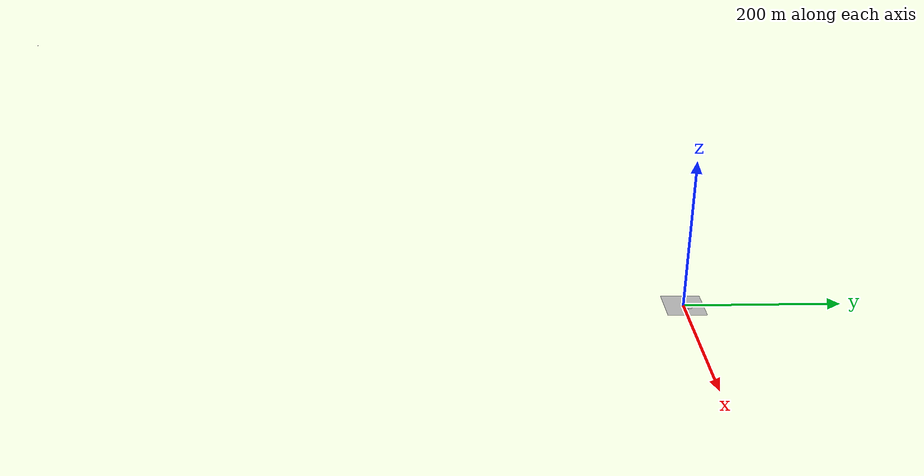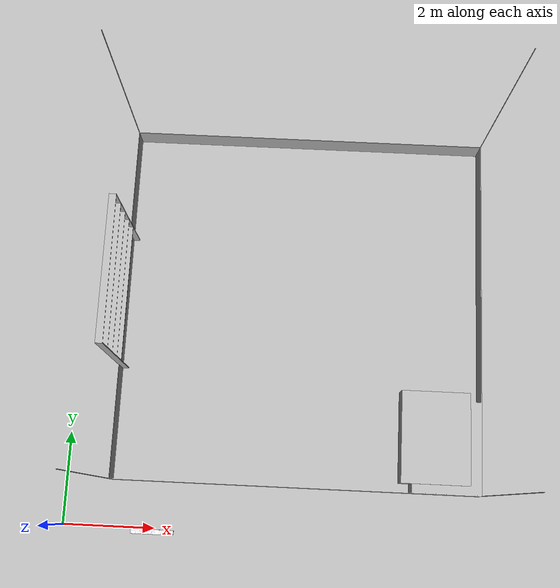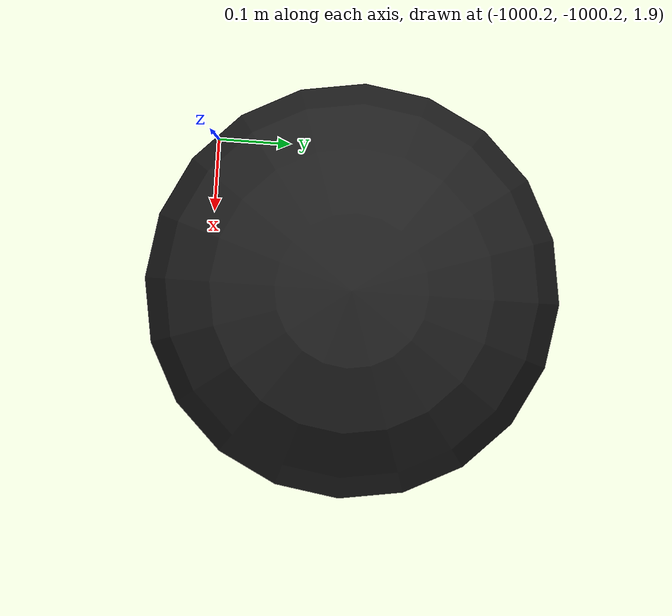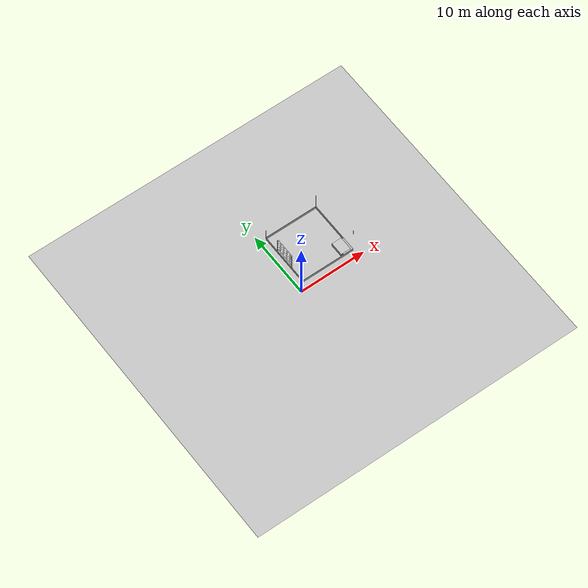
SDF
<?xml version="1.0" ?>
<sdf version="1.10">
  <world name="fase3">
    <plugin
      filename="gz-sim-physics-system"
      name="gz::sim::systems::Physics">
    </plugin>
    <plugin
      filename="gz-sim-user-commands-system"
      name="gz::sim::systems::UserCommands">
    </plugin>
    <plugin
      filename="gz-sim-scene-broadcaster-system"
      name="gz::sim::systems::SceneBroadcaster">
    </plugin>
    <plugin
      filename="gz-sim-sensors-system"
      name="gz::sim::systems::Sensors">
      <render_engine>ogre2</render_engine>
    </plugin>
    <plugin
      filename="gz-sim-imu-system"
      name="gz::sim::systems::Imu">
    </plugin>
    <plugin
      filename="gz-sim-air-speed-system"
      name="gz::sim::systems::AirSpeed">
    </plugin>
    <plugin
      name='gz::sim::systems::AirPressure'
      filename='gz-sim-air-pressure-system'>
    </plugin>

    <light type="directional" name="sun">
      <cast_shadows>true</cast_shadows>
      <pose>0 0 20 0 0 0</pose>
      <ambient>0.8 0.8 0.8 1</ambient>
      <diffuse>1.0 1.0 1.0 1</diffuse>
      <specular>0.2 0.2 0.2 1</specular>
      <attenuation>
        <range>1000</range>
        <constant>0.9</constant>
        <linear>0.01</linear>
        <quadratic>0.001</quadratic>
      </attenuation>
      <direction>-0.5 0.1 -0.9</direction>
    </light>

    <!-- setup shadows {-->
    <scene>
      <shadows>false</shadows>
      <sky>
        <clouds />
      </sky>
    </scene>

    <!-- ground plane {-->
    <model name="ground_plane">
      <static>true</static>
      <link name="link">
        <collision name="collision">
          <pose>0 0 0 0 0 0</pose>
          <geometry>
            <plane>
              <normal>0 0 1</normal>
              <size>250 250</size>
            </plane>
          </geometry>
          <surface>
            <friction>
              <ode>
                <mu>1</mu>
                <mu2>1</mu2>
              </ode>
            </friction>
          </surface>
        </collision>
        <visual name="grass">
          <pose>0 0 0 0 0 0</pose>
          <cast_shadows>false</cast_shadows>
          <geometry>
            <mesh>
              <uri>file://grass_plane/meshes/grass_plane.dae</uri>
            </mesh>
          </geometry>
        </visual>
      </link>
    </model>

    <!-- THE VOID (for spawning objects out of camera view) {-->
    <model name='the_void'>
      <static>1</static>
      <link name='link'>
        <pose frame=''>0 0 0.1 0 -0 0</pose>
        <visual name='the_void'>
          <pose frame=''>0 0 2 0 -0 0</pose>
          <geometry>
            <sphere>
              <radius>0.25</radius>
            </sphere>
          </geometry>
          <material>
            <script>
              <uri>file://media/materials/scripts/Gazebo.material</uri>
              <name>Gazebo/Black</name>
            </script>
          </material>
        </visual>
        <self_collide>0</self_collide>
        <enable_wind>0</enable_wind>
        <kinematic>0</kinematic>
      </link>
      <pose frame=''>-1000 -1000 0 0 0 0</pose>
    </model>

    <!-- user camera {-->
    <gui>
      <camera name="camera">
        <pose>-4 -4 7 0 0.4 0.89</pose>
      </camera>
    </gui>

    <!-- Models Worlds -->

    <!-- THE ARENA MODEL -->
    <model name="arena">
      <include>
        <uri>model://arena_spawn</uri>
        <!-- Pose ( x y z r p y ) -->
        <pose>1 1 0.001 0 -0 0</pose>
      </include>
    </model>

    <!-- THE TAKEOFF PLATFORM MODEL -->
    <model name="takeoff_platform">
      <include>
        <uri>model://takeoff_platform</uri>
        <pose>8.0 2.2 0.0 0.0 -0.0 0.0</pose>
      </include>
    </model>

    <!-- THE BANNER MODEL -->
    <model name="banner">
      <include>
        <uri>model://banner</uri>
        <pose>1.0 -0.6 0.29 3.14 -0 1.57</pose>
      </include>
    </model>

    <!-- THE BARCODE SHELF -->
    <model name="barcode_shelf">
      <include>
        <uri>model://barcode_shelf</uri>
        <!-- Pose ( x y z r p y ) -->
        <pose>1.0 3.5 0.012 0.0 -0.0 0.0</pose>
      </include>
    </model>

  </world>
</sdf>

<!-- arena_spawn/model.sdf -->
<sdf version='1.6'>
  <model name='arena_spawn'>
    <link name='link_arena'>
      <inertial>
        <mass>1</mass>
        <inertia>
          <ixx>0.166667</ixx>
          <ixy>0</ixy>
          <ixz>0</ixz>
          <iyy>0.166667</iyy>
          <iyz>0</iyz>
          <izz>0.166667</izz>
        </inertia>
      </inertial>
      <self_collide>1</self_collide>
      <enable_wind>0</enable_wind>
      <kinematic>0</kinematic>
      <pose frame=''>0 0 0 0 -0 0</pose>
      <visual name='visual'>
        <pose frame=''>0 0 0 0 -0 0</pose>
        <geometry>
          <mesh>
            <uri>model://arena_spawn/meshes/Arena.obj</uri>
            <scale>1 1 1</scale>
          </mesh>
        </geometry>
        <transparency>0</transparency>
        <cast_shadows>1</cast_shadows>
      </visual>
      <collision name='collision'>
        <laser_retro>0</laser_retro>
        <max_contacts>10</max_contacts>
        <pose frame=''>0 0 0 0 -0 0</pose>
        <geometry>
          <mesh>
            <uri>model://arena_spawn/meshes/Arena.obj</uri>
            <scale>1 1 1</scale>
          </mesh>
        </geometry>
        <surface>
          <friction>
            <ode>
              <mu>1</mu>
              <mu2>1</mu2>
              <fdir1>0 0 0</fdir1>
              <slip1>0</slip1>
              <slip2>0</slip2>
            </ode>
            <torsional>
              <coefficient>1</coefficient>
              <patch_radius>100</patch_radius>
              <surface_radius>100</surface_radius>
              <use_patch_radius>1</use_patch_radius>
              <ode>
                <slip>0</slip>
              </ode>
            </torsional>
          </friction>
          <bounce>
            <restitution_coefficient>0</restitution_coefficient>
            <threshold>1e+06</threshold>
          </bounce>
          <contact>
            <collide_without_contact>0</collide_without_contact>
            <collide_without_contact_bitmask>1</collide_without_contact_bitmask>
            <collide_bitmask>1</collide_bitmask>
            <ode>
              <soft_cfm>0</soft_cfm>
              <soft_erp>0.2</soft_erp>
              <kp>1e+13</kp>
              <kd>1</kd>
              <max_vel>0.01</max_vel>
              <min_depth>0</min_depth>
            </ode>
            <bullet>
              <split_impulse>1</split_impulse>
              <split_impulse_penetration_threshold>-0.01</split_impulse_penetration_threshold>
              <soft_cfm>0</soft_cfm>
              <soft_erp>0.2</soft_erp>
              <kp>1e+13</kp>
              <kd>1</kd>
            </bullet>
          </contact>
        </surface>
      </collision>
    </link>
    <static>1</static>
    <pose frame=''>0 0 0.0005 0 -0 0</pose>
  </model>
</sdf>

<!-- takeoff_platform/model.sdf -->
<sdf version='1.6'>
  <model name='takeoff_platform'>
    <link name='link_takeoff_platform'>
      <inertial>
        <mass>15</mass>
        <inertia>
          <ixx>1</ixx>
          <ixy>0</ixy>
          <ixz>0</ixz>
          <iyy>1</iyy>
          <iyz>0</iyz>
          <izz>1</izz>
        </inertia>
      </inertial>
      <self_collide>1</self_collide>
      <enable_wind>0</enable_wind>
      <kinematic>0</kinematic>
      <pose frame=''>0 0 0 0 -0 0</pose>
      <visual name='visual'>
        <pose frame=''>0 0 0 0 -0 0</pose>
        <geometry>
          <mesh>
            <uri>model://takeoff_platform/meshes/takeoff_platform.obj</uri>
            <scale>1 1 1</scale>
          </mesh>
        </geometry>
        <transparency>0</transparency>
        <cast_shadows>1</cast_shadows>
      </visual>
      <collision name='collision'>
        <laser_retro>0</laser_retro>
        <max_contacts>10</max_contacts>
        <pose frame=''>0 0 0 0 -0 0</pose>
        <geometry>
          <mesh>
            <uri>model://takeoff_platform/meshes/takeoff_platform.obj</uri>
            <scale>1 1 1</scale>
          </mesh>
        </geometry>
        <surface>
          <friction>
            <ode>
              <mu>1</mu>
              <mu2>1</mu2>
              <fdir1>0 0 0</fdir1>
              <slip1>0</slip1>
              <slip2>0</slip2>
            </ode>
            <torsional>
              <coefficient>1</coefficient>
              <patch_radius>100</patch_radius>
              <surface_radius>100</surface_radius>
              <use_patch_radius>1</use_patch_radius>
              <ode>
                <slip>0</slip>
              </ode>
            </torsional>
          </friction>
          <bounce>
            <restitution_coefficient>0</restitution_coefficient>
            <threshold>1e+06</threshold>
          </bounce>
          <contact>
            <collide_without_contact>0</collide_without_contact>
            <collide_without_contact_bitmask>1</collide_without_contact_bitmask>
            <collide_bitmask>1</collide_bitmask>
            <ode>
              <soft_cfm>0</soft_cfm>
              <soft_erp>0.2</soft_erp>
              <kp>1e+13</kp>
              <kd>1</kd>
              <max_vel>0.01</max_vel>
              <min_depth>0</min_depth>
            </ode>
            <bullet>
              <split_impulse>1</split_impulse>
              <split_impulse_penetration_threshold>-0.01</split_impulse_penetration_threshold>
              <soft_cfm>0</soft_cfm>
              <soft_erp>0.2</soft_erp>
              <kp>1e+13</kp>
              <kd>1</kd>
            </bullet>
          </contact>
        </surface>
      </collision>
    </link>
    <static>1</static>
    <pose frame=''>0 0 0.0005 0 -0 0</pose>
  </model>
</sdf>

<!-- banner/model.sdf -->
<sdf version="1.6">
  <model name="banner">
    <static>true</static>
    <link name="link">
      <collision name="collision">
        <geometry>
          <mesh>
            <scale>1 1.5 1</scale>
            <uri>model://banner/meshes/banner.dae</uri>
          </mesh>
        </geometry>
      </collision>
      <visual name="visual">
        <geometry>
          <mesh>
            <scale>1 1.5 1</scale>
            <uri>model://banner/meshes/banner.dae</uri>
          </mesh>
        </geometry>
       <material>
         <script>
           <uri>model://banner/materials/scripts</uri>
           <uri>model://banner/materials/textures</uri>
           <name>FlipChart/Diffuse</name>
         </script>
       </material>
      </visual>
    </link>
  </model>
</sdf>

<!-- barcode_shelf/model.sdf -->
<sdf version='1.7'>
  <model name='barcode_shelf'>
    <link name='link_barcode_shelf'>
      <inertial>
        <mass>1</mass>
        <inertia>
          <ixx>0.166667</ixx>
          <ixy>0</ixy>
          <ixz>0</ixz>
          <iyy>0.166667</iyy>
          <iyz>0</iyz>
          <izz>0.166667</izz>
        </inertia>
      </inertial>
      <pose>0 0 0 1.5708 -0 0</pose>
      <visual name='visual'>
        <pose>0 0 0 0 -0 0</pose>
        <geometry>
          <mesh>
            <uri>model://barcode_shelf/meshes/shelf.obj</uri>
            <scale>1 1 1</scale>
          </mesh>
        </geometry>
        <transparency>0</transparency>
        <cast_shadows>1</cast_shadows>
      </visual>
      <collision name='collision'>
        <laser_retro>0</laser_retro>
        <max_contacts>10</max_contacts>
        <pose>0 0 0 0 -0 0</pose>
        <geometry>
          <mesh>
            <uri>model://barcode_shelf/meshes/shelf.obj</uri>
            <scale>1 1 1</scale>
          </mesh>
        </geometry>
        <surface>
          <friction>
            <ode>
              <mu>1</mu>
              <mu2>1</mu2>
              <fdir1>0 0 0</fdir1>
              <slip1>0</slip1>
              <slip2>0</slip2>
            </ode>
            <torsional>
              <coefficient>1</coefficient>
              <patch_radius>0</patch_radius>
              <surface_radius>0</surface_radius>
              <use_patch_radius>1</use_patch_radius>
              <ode>
                <slip>0</slip>
              </ode>
            </torsional>
          </friction>
          <bounce>
            <restitution_coefficient>0</restitution_coefficient>
            <threshold>1e+06</threshold>
          </bounce>
          <contact>
            <collide_without_contact>0</collide_without_contact>
            <collide_without_contact_bitmask>1</collide_without_contact_bitmask>
            <collide_bitmask>1</collide_bitmask>
            <ode>
              <soft_cfm>0</soft_cfm>
              <soft_erp>0.2</soft_erp>
              <kp>1e+13</kp>
              <kd>1</kd>
              <max_vel>0.01</max_vel>
              <min_depth>0</min_depth>
            </ode>
            <bullet>
              <split_impulse>1</split_impulse>
              <split_impulse_penetration_threshold>-0.01</split_impulse_penetration_threshold>
              <soft_cfm>0</soft_cfm>
              <soft_erp>0.2</soft_erp>
              <kp>1e+13</kp>
              <kd>1</kd>
            </bullet>
          </contact>
        </surface>
      </collision>
    </link>
    <static>1</static>
    <allow_auto_disable>1</allow_auto_disable>
  </model>
</sdf>
